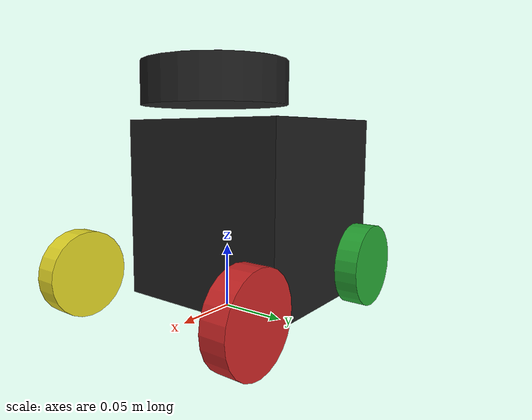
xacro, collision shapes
<?xml version="1.0" ?>
<robot name="limo" xmlns:xacro="http://ros.org/wiki/xacro">
  <xacro:include filename="$(find limo_sim)/urdf/limo.gazebo.xacro" />

  <link name="base_footprint"/>

  <joint name="base_joint" type="fixed">
    <parent link="base_footprint"/>
    <child link="base_link"/>
    <origin xyz="0.0 0.0 0.008" rpy="0 0 0"/>
  </joint>

  <link name="base_link">
    <visual>
      <geometry>
        <mesh filename="package://limo_sim/meshes/bases/burger_base.stl" scale="0.001 0.001 0.001"/>
      </geometry>
      <material name="light_black"/>
    </visual>

    <collision>
      <origin xyz="-0.032 0 0.070" rpy="0 0 0"/>
      <geometry>
        <box size="0.140 0.140 0.143"/>
      </geometry>
    </collision>

    <inertial>
      <origin xyz="0 0 0" rpy="0 0 0"/>
      <mass value="8.2573504e-01"/>
      <inertia ixx="2.2124416e-03" ixy="-1.2294101e-05" ixz="3.4938785e-05"
               iyy="2.1193702e-03" iyz="-5.0120904e-06"
               izz="2.0064271e-03" />
    </inertial>
  </link>

  <joint name="wheel_front_left_joint" type="continuous">
    <parent link="base_link" />
    <child link="wheel_front_left_link" />
    <origin xyz="0.08 0.08 0.023" rpy="-1.57 0 0" />
    <axis xyz="0 0 1" />
  </joint>

  <link name="wheel_front_left_link">
    <visual>
      <origin xyz="0 0 0" rpy="1.57 0 0" />
      <geometry>
        <mesh filename="package://limo_sim/meshes/wheels/front_left_tire.stl" scale="0.001 0.001 0.001"/>
      </geometry>
      <material name="red" />
    </visual>
    <collision>
      <origin xyz="0 0 0" rpy="0 0 0"/>
      <geometry>
        <cylinder length="0.018" radius="0.033" />
      </geometry>
    </collision>
    <inertial>
      <origin xyz="0 0 0"/>
      <mass value="10" />
      <inertia ixx="1.1175580e-02" ixy="-4.2369783e-11" ixz="-5.9381719e-09"
               iyy="1.1192413e-02" iyz="-1.4400107e-11"
               izz="2.0712558e-02" />
      </inertial>
  </link>

  <joint name="wheel_rear_left_joint" type="continuous" >
    <parent link="base_link" />
    <child link="wheel_rear_left_link"/>
    <origin xyz="-0.08 0.08 0.023" rpy="-1.57 0 0" />
    <axis xyz="0 0 1" />
  </joint>

  <link name="wheel_rear_left_link">
    <visual>
      <origin xyz="0 0 0" rpy="1.57 0 0" />
      <geometry>
        <mesh filename="package://limo_sim/meshes/wheels/rear_left_tire.stl" scale="0.001 0.001 0.001"/>
      </geometry>
      <material name="green"/>
    </visual>
    <collision>
      <origin xyz="0 0 0" rpy="0 0 0"/>
      <geometry>
        <cylinder length="0.018" radius="0.033" />
      </geometry>
    </collision>
    <inertial>
      <origin xyz="0 0 0"/>
      <mass value="10" />
      <inertia ixx="1.1175580e-02" ixy="-4.2369783e-11" ixz="-5.9381719e-09"
               iyy="1.1192413e-02" iyz="-1.4400107e-11"
               izz="2.0712558e-02" />
    </inertial>
  </link>

  <joint name="wheel_rear_right_joint" type="continuous">
    <parent link="base_link" />
    <child link="wheel_rear_right_link"/>
    <origin xyz="-0.08 -0.08 0.023" rpy="-1.57 0 0" />
    <axis xyz="0 0 1" />
  </joint>

  <link name="wheel_rear_right_link">
    <visual>
      <origin xyz="0 0 0" rpy="1.57 0 0" />
      <geometry>
        <mesh filename="package://limo_sim/meshes/wheels/rear_right_tire.stl" scale="0.001 0.001 0.001"/>
      </geometry>
      <material name="blue"/>
    </visual>
    <collision>
      <origin xyz="0 0 0" rpy="0 0 0"/>
      <geometry>
        <cylinder length="0.018" radius="0.033"/>
      </geometry>
    </collision>
    <inertial>
      <origin xyz="0 0 0"/>
      <mass value="10" />
      <inertia ixx="1.1175580e-02" ixy="-4.2369783e-11" ixz="-5.9381719e-09"
               iyy="1.1192413e-02" iyz="-1.4400107e-11"
               izz="2.0712558e-02" />
    </inertial>
  </link>

  <joint name="wheel_front_right_joint" type="continuous" >
    <parent link="base_link" />
    <child link="wheel_front_right_link" />
    <origin xyz="0.08 -0.08 0.023" rpy="-1.57 0 0"/>
    <axis xyz="0 0 1"/>
  </joint>

  <link name="wheel_front_right_link">
    <visual>
      <origin xyz="0 0 0" rpy="1.57 0 0" />
      <geometry>
        <mesh filename="package://limo_sim/meshes/wheels/front_right_tire.stl" scale="0.001 0.001 0.001"/>
      </geometry>
      <material name="yellow"/>
    </visual>
    <collision>
      <origin xyz="0 0 0" rpy="0 0 0"/>
      <geometry>
        <cylinder length="0.018" radius="0.033" />
      </geometry>
    </collision>
    <inertial>
      <origin xyz="0 0 0" />
      <mass value="10" />
      <inertia ixx="1.1175580e-02" ixy="-4.2369783e-11" ixz="-5.9381719e-09"
               iyy="1.1192413e-02" iyz="-1.4400107e-11"
               izz="2.0712558e-02" />
    </inertial>
  </link>

  <joint name="imu_joint" type="fixed">
    <parent link="base_link"/>
    <child link="imu_link"/>
    <origin xyz="-0.032 0 0.068" ryp="0 0 0"/>
  </joint>

  <link name="imu_link" />

  <joint name="scan_joint" type="fixed">
    <parent link="base_link"/>
    <child link="base_scan" />
    <origin xyz="0.0 0 0.172" rpy="0 0 0"/>
  </joint>

  <link name="base_scan">
    <visual>
      <geometry>
        <mesh filename="package://limo_sim/meshes/sensors/lds.stl" scale="0.001 0.001 0.001"/>
      </geometry>
      <material name="dark" />
    </visual>
    <collision>
      <origin xyz="0.015 0 -0.005" rpy="0 0 0"/>
      <geometry>
        <cylinder length="0.0315" radius="0.055"/>
      </geometry>
    </collision>
    <inertial>
      <mass value="0.114" />
      <origin xyz="0 0 0"/>
      <inertia ixx="0.001" ixy="0.0" ixz="0.0"
               iyy="0.001" iyz="0.0"
               izz="0.001" />
    </inertial>
  </link>

</robot>
